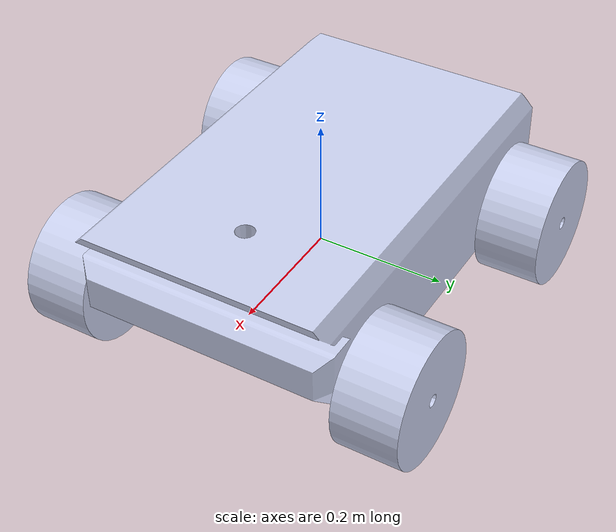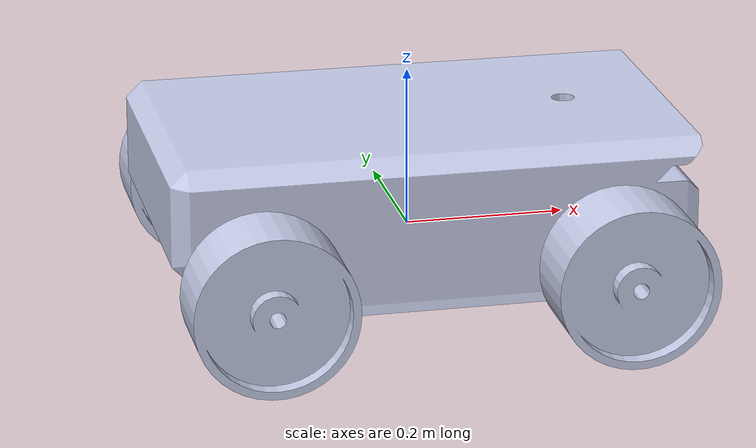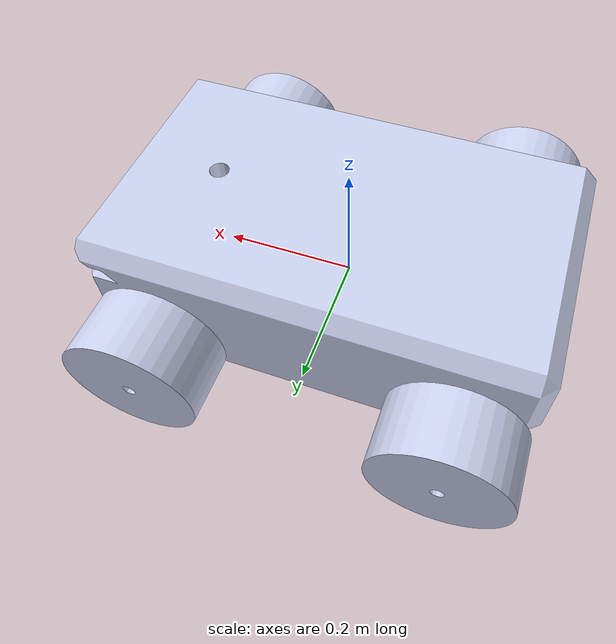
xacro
<?xml version="1.0"?>

<robot xmlns:xacro="http://ros.org/wiki/xacro" name="robot_base" >

<xacro:include filename="$(find robot_description)/urdf/robot_essentials.xacro" />
<xacro:include filename="$(find robot_description)/urdf/gazebo_essentials_base.xacro" />

  <link name="base_link">
    <inertial>
      <origin
        xyz="0.0030946 4.78250032638821E-11 0.053305"
        rpy="0 0 0" />
      <mass
        value="47.873" />
      <inertia
        ixx="0.774276574699151"
        ixy="-1.03781944357671E-10"
        ixz="0.00763014265820928"
        iyy="1.64933255189991"
        iyz="1.09578155845563E-12"
        izz="2.1239326987473" />
    </inertial>
    <visual>
      <origin
        xyz="0 0 0"
        rpy="1.5707963267949 0 3.14" />
      <geometry>
        <mesh filename="package://robot_description/meshes/robot_base.stl" />
      </geometry>
      <material
        name="">
        <color
          rgba="0.79216 0.81961 0.93333 1" />
      </material>
    </visual>
    <collision>
      <origin
        xyz="0 0 0"
        rpy="1.5707963267949 0 3.14" />
      <geometry>
        <mesh filename="package://robot_description/meshes/robot_base.stl" />
      </geometry>
    </collision>
  </link>
<!--############################# Remaining wheels #########################################-->

<xacro:robot_wheel prefix="front_left"/>
<xacro:robot_wheel prefix="front_right"/>
<xacro:robot_wheel prefix="rear_left"/>
<xacro:robot_wheel prefix="rear_right"/>

<!--############################# Wheel Joints #########################################-->

<xacro:wheel_joint prefix="front_left" origin="0.220 0.250 0"/>
<xacro:wheel_joint prefix="front_right" origin="0.220 -0.250 0"/>
<xacro:wheel_joint prefix="rear_left" origin="-0.220 0.250 0"/>
<xacro:wheel_joint prefix="rear_right" origin="-0.220 -0.250 0"/>

<!--############################# Wheel Transmissions #########################################-->

<xacro:base_transmission prefix="front_left"/>
<xacro:base_transmission prefix="front_right"/>
<xacro:base_transmission prefix="rear_left"/>
<xacro:base_transmission prefix="rear_right"/>

<!--############################# Wheel Friction #########################################-->

<xacro:wheel_friction prefix="front_left"/>
<xacro:wheel_friction prefix="front_right"/>
<xacro:wheel_friction prefix="rear_left"/>
<xacro:wheel_friction prefix="rear_right"/>

</robot>

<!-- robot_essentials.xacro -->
<robot xmlns:xacro="http://ros.org/wiki/xacro" name="robot_essentials" >

<xacro:macro name="robot_wheel" params="prefix">

<link name="${prefix}_wheel">
    <inertial>
      <origin
        xyz="-4.1867E-18 0.0068085 -1.65658661799998E-18"
        rpy="0 0 0" />
      <mass
        value="2.6578" />
      <inertia
        ixx="0.00856502765719703"
        ixy="1.5074118157338E-19"
        ixz="-4.78150098725052E-19"
        iyy="0.013670640432096"
        iyz="-2.68136447099727E-19"
        izz="0.00856502765719703" />
    </inertial>
    <visual>
      <origin
        xyz="0 0 0"
        rpy="1.5707963267949 0 0" />
      <geometry>
        <mesh filename="package://robot_description/meshes/wheel.stl" />
      </geometry>
      <material
        name="">
        <color
          rgba="0.79216 0.81961 0.93333 1" />
      </material>
    </visual>
    <collision>
      <origin
        xyz="0 0 0"
        rpy="1.5707963267949 0 0" />
      <geometry>
        <mesh filename="package://robot_description/meshes/wheel.stl" />
      </geometry>
    </collision>
  </link>

</xacro:macro>

<xacro:macro name="wheel_joint" params="prefix origin">

<joint name="${prefix}_wheel_joint" type="continuous">
    <axis xyz="0 1 0"/>
    <parent link ="base_link"/>
    <child link ="${prefix}_wheel"/>
    <origin rpy ="0 0 0" xyz= "${origin}"/>
  </joint>

</xacro:macro>

<xacro:macro name="arm_joint" params="prefix parent child originxyz originrpy">

<joint name="${prefix}_joint" type="continuous">
  <axis xyz="0 0 1"/>
  <parent link="${parent}"/>
  <child link="${child}"/>
  <origin rpy="${originrpy}" xyz="${originxyz}"/>
</joint>

</xacro:macro>

<xacro:macro name="base_transmission" params="prefix ">

<transmission name="${prefix}_wheel_trans" type="SimpleTransmission">
  <type>transmission_interface/SimpleTransmission</type>
  <actuator name="${prefix}_wheel_motor">
   <hardwareInterface>hardware_interface/VelocityJointInterface</hardwareInterface>
   <mechanicalReduction>1</mechanicalReduction>
  </actuator>
  <joint name="${prefix}_wheel_joint">
   <hardwareInterface>hardware_interface/VelocityJointInterface</hardwareInterface>
  </joint>
</transmission>

</xacro:macro>

<xacro:macro name="arm_transmission" params="prefix ">

<transmission name="${prefix}_trans" type="SimpleTransmission">
  <type>transmission_interface/SimpleTransmission</type>
  <actuator name="${prefix}_motor">
   <hardwareInterface>hardware_interface/PositionJointInterface</hardwareInterface>
   <mechanicalReduction>1</mechanicalReduction>
  </actuator>
  <joint name="${prefix}_joint">
   <hardwareInterface>hardware_interface/PositionJointInterface</hardwareInterface>
  </joint>
</transmission>

</xacro:macro>

</robot>
